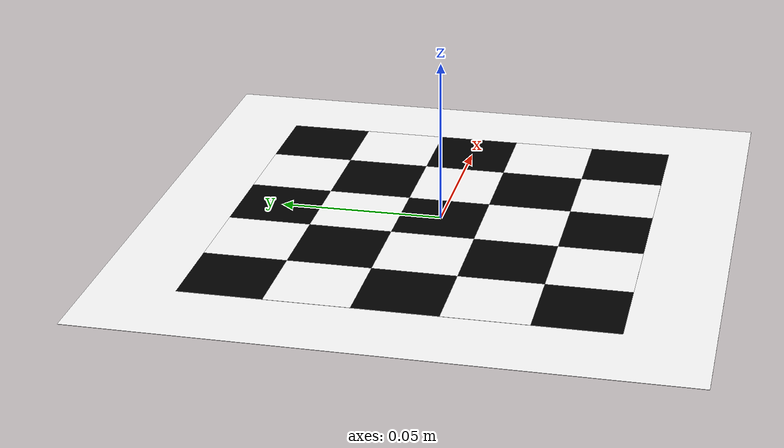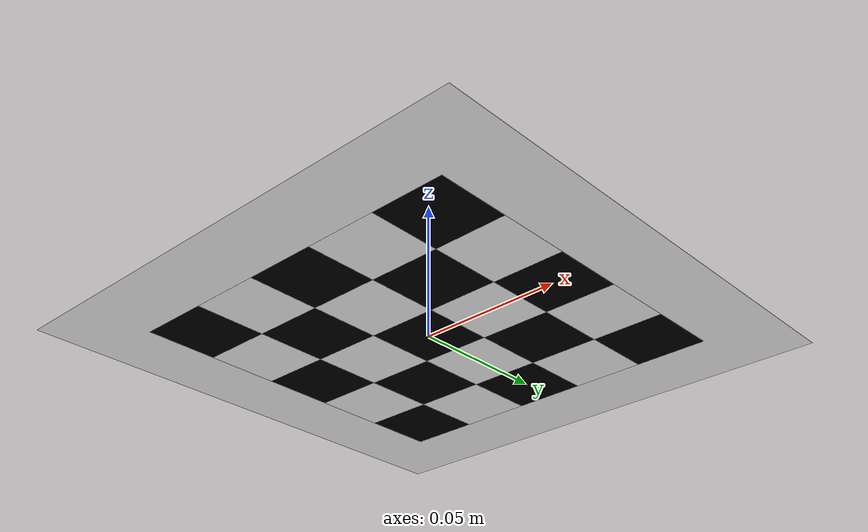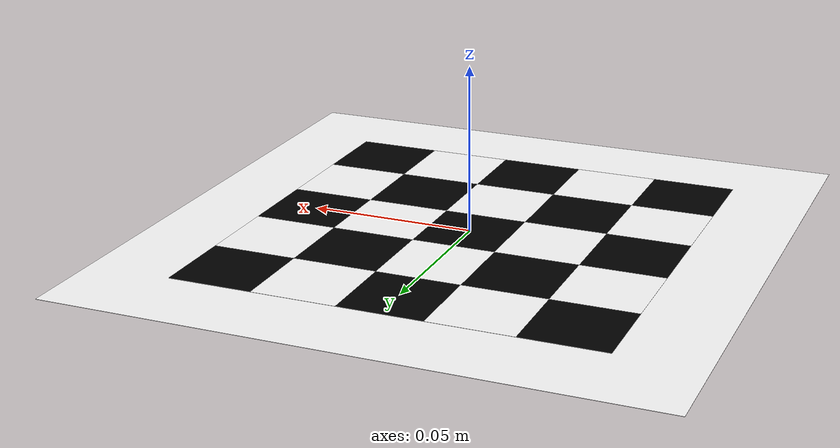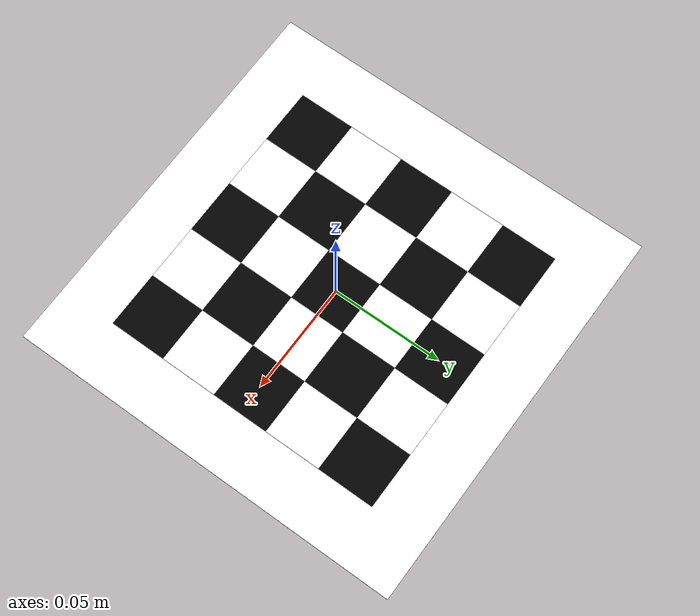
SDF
<?xml version="1.0"?>
<sdf version="1.4">
  <model name="checkerboard_5_5_0_0254">
  <static>true</static>
  <link name="checkerboard_5_5_0_0254_body">
      <visual name="checker_0_0">
        <pose>-0.0508 -0.0508 0 0 0 0</pose>
        <geometry>
          <box>
            <size>0.0254 0.0254 0.0002</size>
          </box>
        </geometry>
        <material>
          <ambient>0 0 0 1</ambient>
          <diffuse>0 0 0 1</diffuse>
          <specular>0 0 0 1</specular>
          <emissive>0 0 0 1</emissive>
        </material>
      </visual>
      <visual name="checker_0_1">
        <pose>-0.0508 -0.0254 0 0 0 0</pose>
        <geometry>
          <box>
            <size>0.0254 0.0254 0.0002</size>
          </box>
        </geometry>
        <material>
          <ambient>1 1 1 1</ambient>
          <diffuse>1 1 1 1</diffuse>
          <specular>1 1 1 1</specular>
          <emissive>1 1 1 1</emissive>
        </material>
      </visual>
      <visual name="checker_0_2">
        <pose>-0.0508 0.0 0 0 0 0</pose>
        <geometry>
          <box>
            <size>0.0254 0.0254 0.0002</size>
          </box>
        </geometry>
        <material>
          <ambient>0 0 0 1</ambient>
          <diffuse>0 0 0 1</diffuse>
          <specular>0 0 0 1</specular>
          <emissive>0 0 0 1</emissive>
        </material>
      </visual>
      <visual name="checker_0_3">
        <pose>-0.0508 0.0254 0 0 0 0</pose>
        <geometry>
          <box>
            <size>0.0254 0.0254 0.0002</size>
          </box>
        </geometry>
        <material>
          <ambient>1 1 1 1</ambient>
          <diffuse>1 1 1 1</diffuse>
          <specular>1 1 1 1</specular>
          <emissive>1 1 1 1</emissive>
        </material>
      </visual>
      <visual name="checker_0_4">
        <pose>-0.0508 0.0508 0 0 0 0</pose>
        <geometry>
          <box>
            <size>0.0254 0.0254 0.0002</size>
          </box>
        </geometry>
        <material>
          <ambient>0 0 0 1</ambient>
          <diffuse>0 0 0 1</diffuse>
          <specular>0 0 0 1</specular>
          <emissive>0 0 0 1</emissive>
        </material>
      </visual>
      <visual name="checker_1_0">
        <pose>-0.0254 -0.0508 0 0 0 0</pose>
        <geometry>
          <box>
            <size>0.0254 0.0254 0.0002</size>
          </box>
        </geometry>
        <material>
          <ambient>1 1 1 1</ambient>
          <diffuse>1 1 1 1</diffuse>
          <specular>1 1 1 1</specular>
          <emissive>1 1 1 1</emissive>
        </material>
      </visual>
      <visual name="checker_1_1">
        <pose>-0.0254 -0.0254 0 0 0 0</pose>
        <geometry>
          <box>
            <size>0.0254 0.0254 0.0002</size>
          </box>
        </geometry>
        <material>
          <ambient>0 0 0 1</ambient>
          <diffuse>0 0 0 1</diffuse>
          <specular>0 0 0 1</specular>
          <emissive>0 0 0 1</emissive>
        </material>
      </visual>
      <visual name="checker_1_2">
        <pose>-0.0254 0.0 0 0 0 0</pose>
        <geometry>
          <box>
            <size>0.0254 0.0254 0.0002</size>
          </box>
        </geometry>
        <material>
          <ambient>1 1 1 1</ambient>
          <diffuse>1 1 1 1</diffuse>
          <specular>1 1 1 1</specular>
          <emissive>1 1 1 1</emissive>
        </material>
      </visual>
      <visual name="checker_1_3">
        <pose>-0.0254 0.0254 0 0 0 0</pose>
        <geometry>
          <box>
            <size>0.0254 0.0254 0.0002</size>
          </box>
        </geometry>
        <material>
          <ambient>0 0 0 1</ambient>
          <diffuse>0 0 0 1</diffuse>
          <specular>0 0 0 1</specular>
          <emissive>0 0 0 1</emissive>
        </material>
      </visual>
      <visual name="checker_1_4">
        <pose>-0.0254 0.0508 0 0 0 0</pose>
        <geometry>
          <box>
            <size>0.0254 0.0254 0.0002</size>
          </box>
        </geometry>
        <material>
          <ambient>1 1 1 1</ambient>
          <diffuse>1 1 1 1</diffuse>
          <specular>1 1 1 1</specular>
          <emissive>1 1 1 1</emissive>
        </material>
      </visual>
      <visual name="checker_2_0">
        <pose>0.0 -0.0508 0 0 0 0</pose>
        <geometry>
          <box>
            <size>0.0254 0.0254 0.0002</size>
          </box>
        </geometry>
        <material>
          <ambient>0 0 0 1</ambient>
          <diffuse>0 0 0 1</diffuse>
          <specular>0 0 0 1</specular>
          <emissive>0 0 0 1</emissive>
        </material>
      </visual>
      <visual name="checker_2_1">
        <pose>0.0 -0.0254 0 0 0 0</pose>
        <geometry>
          <box>
            <size>0.0254 0.0254 0.0002</size>
          </box>
        </geometry>
        <material>
          <ambient>1 1 1 1</ambient>
          <diffuse>1 1 1 1</diffuse>
          <specular>1 1 1 1</specular>
          <emissive>1 1 1 1</emissive>
        </material>
      </visual>
      <visual name="checker_2_2">
        <pose>0.0 0.0 0 0 0 0</pose>
        <geometry>
          <box>
            <size>0.0254 0.0254 0.0002</size>
          </box>
        </geometry>
        <material>
          <ambient>0 0 0 1</ambient>
          <diffuse>0 0 0 1</diffuse>
          <specular>0 0 0 1</specular>
          <emissive>0 0 0 1</emissive>
        </material>
      </visual>
      <visual name="checker_2_3">
        <pose>0.0 0.0254 0 0 0 0</pose>
        <geometry>
          <box>
            <size>0.0254 0.0254 0.0002</size>
          </box>
        </geometry>
        <material>
          <ambient>1 1 1 1</ambient>
          <diffuse>1 1 1 1</diffuse>
          <specular>1 1 1 1</specular>
          <emissive>1 1 1 1</emissive>
        </material>
      </visual>
      <visual name="checker_2_4">
        <pose>0.0 0.0508 0 0 0 0</pose>
        <geometry>
          <box>
            <size>0.0254 0.0254 0.0002</size>
          </box>
        </geometry>
        <material>
          <ambient>0 0 0 1</ambient>
          <diffuse>0 0 0 1</diffuse>
          <specular>0 0 0 1</specular>
          <emissive>0 0 0 1</emissive>
        </material>
      </visual>
      <visual name="checker_3_0">
        <pose>0.0254 -0.0508 0 0 0 0</pose>
        <geometry>
          <box>
            <size>0.0254 0.0254 0.0002</size>
          </box>
        </geometry>
        <material>
          <ambient>1 1 1 1</ambient>
          <diffuse>1 1 1 1</diffuse>
          <specular>1 1 1 1</specular>
          <emissive>1 1 1 1</emissive>
        </material>
      </visual>
      <visual name="checker_3_1">
        <pose>0.0254 -0.0254 0 0 0 0</pose>
        <geometry>
          <box>
            <size>0.0254 0.0254 0.0002</size>
          </box>
        </geometry>
        <material>
          <ambient>0 0 0 1</ambient>
          <diffuse>0 0 0 1</diffuse>
          <specular>0 0 0 1</specular>
          <emissive>0 0 0 1</emissive>
        </material>
      </visual>
      <visual name="checker_3_2">
        <pose>0.0254 0.0 0 0 0 0</pose>
        <geometry>
          <box>
            <size>0.0254 0.0254 0.0002</size>
          </box>
        </geometry>
        <material>
          <ambient>1 1 1 1</ambient>
          <diffuse>1 1 1 1</diffuse>
          <specular>1 1 1 1</specular>
          <emissive>1 1 1 1</emissive>
        </material>
      </visual>
      <visual name="checker_3_3">
        <pose>0.0254 0.0254 0 0 0 0</pose>
        <geometry>
          <box>
            <size>0.0254 0.0254 0.0002</size>
          </box>
        </geometry>
        <material>
          <ambient>0 0 0 1</ambient>
          <diffuse>0 0 0 1</diffuse>
          <specular>0 0 0 1</specular>
          <emissive>0 0 0 1</emissive>
        </material>
      </visual>
      <visual name="checker_3_4">
        <pose>0.0254 0.0508 0 0 0 0</pose>
        <geometry>
          <box>
            <size>0.0254 0.0254 0.0002</size>
          </box>
        </geometry>
        <material>
          <ambient>1 1 1 1</ambient>
          <diffuse>1 1 1 1</diffuse>
          <specular>1 1 1 1</specular>
          <emissive>1 1 1 1</emissive>
        </material>
      </visual>
      <visual name="checker_4_0">
        <pose>0.0508 -0.0508 0 0 0 0</pose>
        <geometry>
          <box>
            <size>0.0254 0.0254 0.0002</size>
          </box>
        </geometry>
        <material>
          <ambient>0 0 0 1</ambient>
          <diffuse>0 0 0 1</diffuse>
          <specular>0 0 0 1</specular>
          <emissive>0 0 0 1</emissive>
        </material>
      </visual>
      <visual name="checker_4_1">
        <pose>0.0508 -0.0254 0 0 0 0</pose>
        <geometry>
          <box>
            <size>0.0254 0.0254 0.0002</size>
          </box>
        </geometry>
        <material>
          <ambient>1 1 1 1</ambient>
          <diffuse>1 1 1 1</diffuse>
          <specular>1 1 1 1</specular>
          <emissive>1 1 1 1</emissive>
        </material>
      </visual>
      <visual name="checker_4_2">
        <pose>0.0508 0.0 0 0 0 0</pose>
        <geometry>
          <box>
            <size>0.0254 0.0254 0.0002</size>
          </box>
        </geometry>
        <material>
          <ambient>0 0 0 1</ambient>
          <diffuse>0 0 0 1</diffuse>
          <specular>0 0 0 1</specular>
          <emissive>0 0 0 1</emissive>
        </material>
      </visual>
      <visual name="checker_4_3">
        <pose>0.0508 0.0254 0 0 0 0</pose>
        <geometry>
          <box>
            <size>0.0254 0.0254 0.0002</size>
          </box>
        </geometry>
        <material>
          <ambient>1 1 1 1</ambient>
          <diffuse>1 1 1 1</diffuse>
          <specular>1 1 1 1</specular>
          <emissive>1 1 1 1</emissive>
        </material>
      </visual>
      <visual name="checker_4_4">
        <pose>0.0508 0.0508 0 0 0 0</pose>
        <geometry>
          <box>
            <size>0.0254 0.0254 0.0002</size>
          </box>
        </geometry>
        <material>
          <ambient>0 0 0 1</ambient>
          <diffuse>0 0 0 1</diffuse>
          <specular>0 0 0 1</specular>
          <emissive>0 0 0 1</emissive>
        </material>
      </visual>
      <visual name="checker_backdrop">
        <pose>0 0 0 0 0 0</pose>
        <geometry>
          <box>
            <size>0.1778 0.1778 0.0001</size>
          </box>
        </geometry>
        <material>
          <ambient>1 1 1 1</ambient>
          <diffuse>1 1 1 1</diffuse>
          <specular>1 1 1 1</specular>
          <emissive>1 1 1 1</emissive>
        </material>
      </visual>
    </link>
  </model>
</sdf>
